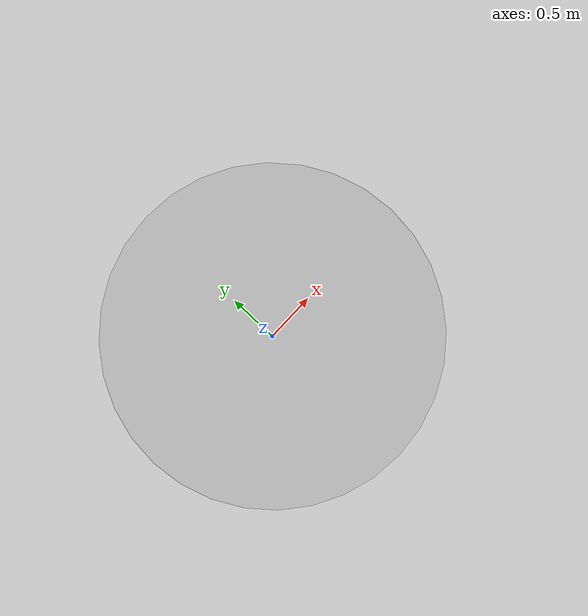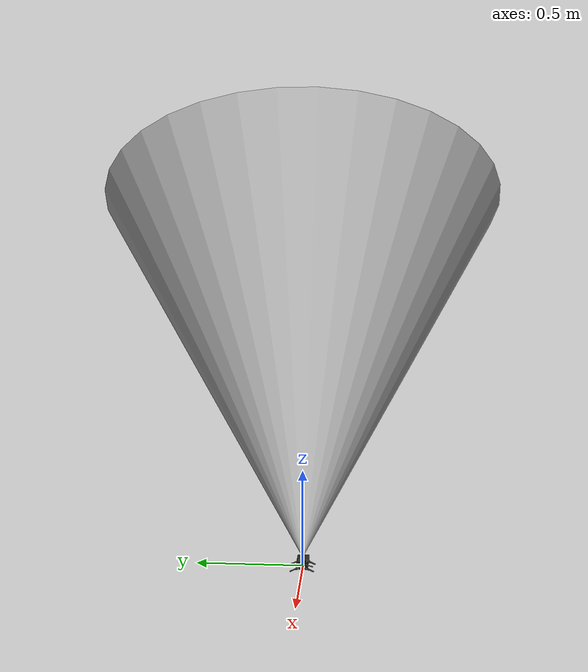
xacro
<?xml version="1.0"?>
<robot xmlns:xacro="http://www.ros.org/wiki/xacro" name="roadrunner">
<xacro:include filename="$(find kamagami)/urdf/kamagami.xacro"/>
<link name="cone_link">
	<visual>
		<origin xyz="0 0 0"/>
		<geometry>
			<mesh filename="$(find kamagami)/meshes/cone.dae"/>
		</geometry>
	</visual>
</link>
<gazebo reference="cone_link">
  <visual name="cone_vis">
  <transparency>0.8</transparency>
  <material>
  <ambient>1.0 0 0 0.1</ambient>
  <diffuse>1.0 0 0 0.1</diffuse>
  <specular>1.0 0 0 0.1</specular>
  <emissive>1.0 0 0 0.1</emissive>
  </material>
  </visual>
</gazebo>
<joint name="cone_joint" type="fixed">
	<origin xyz="0 0 0"/>
	<parent link="base_link"/>
	<child link="cone_link"/>
	<axis xyz="0 0 -1"/>
</joint>
</robot>

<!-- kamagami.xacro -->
<robot xmlns:xacro="http://www.ros.org/wiki/xacro" name="roadrunner">
<xacro:property name="wheel_radius" value="0.03" />
<xacro:property name="wheel_separation" value="0.12" />
<xacro:property name="show_wheels" value="false" />
<xacro:macro name="ball_wheel" params="origin name">
	<link name="${name}_link">
		<collision>
			<geometry>
				<sphere radius="0.005"/>
			</geometry>
		</collision>
			<inertial>
				<mass value="0.01"/>
				<inertia
					ixx="0.000001" ixy="0.0" ixz="0.0"
					iyy="0.000001" iyz="0.0"
					izz="0.000001" />
			</inertial>
		<xacro:if value="${show_wheels}">
			<visual>
				<geometry>
					<sphere radius="0.005"/>
				</geometry>
			</visual>
		</xacro:if>
	</link>
		<gazebo reference="${name}_link">
			<material>Gazebo/Orange</material>
			<mu1 value="0.1"/>
			<mu2 value="0.1"/>
		</gazebo>
		<joint name="${name}_joint" type="fixed">
			<origin xyz="${origin}"/>
			<parent link="body_link"/>
			<child link="${name}_link"/>
		</joint>
</xacro:macro>
	<xacro:macro name="wheel" params="xyz rpy name">
		<link name="${name}_link">
			<collision name="collision">
				<geometry>
					<cylinder radius="${wheel_radius}" length="0.01"/>
				</geometry>
			</collision>
			<inertial>
				<mass value="0.01"/>
				<inertia
					ixx="0.000001" ixy="0.0" ixz="0.0"
					iyy="0.000001" iyz="0.0"
					izz="0.000001" />
			</inertial>
		<xacro:if value="${show_wheels}">
			<visual>
				<geometry>
					<cylinder radius="${wheel_radius}" length="0.01"/>
				</geometry>
			</visual>
		</xacro:if>
		</link>
		<gazebo reference="${name}_link">
			<material>Gazebo/Orange</material>
			<mu1 value="0.8"/>
			<mu2 value="0.8"/>
		</gazebo>
		<joint name="${name}_joint" type="continuous">
			<origin xyz="${xyz}" rpy="${rpy}"/>
			<parent link="body_link"/>
			<child link="${name}_link"/>
			<axis xyz="0 0 -1"/>
		</joint>
	</xacro:macro>

	<link name="base_link">
			<inertial>
				<mass value="0.01"/>
				<inertia
					ixx="0.000001" ixy="0.0" ixz="0.0"
					iyy="0.000001" iyz="0.0"
					izz="0.000001" />
			</inertial>
	</link>
		<joint name="base_joint" type="fixed">
			<origin xyz="0 0 0.025"/>
			<parent link="base_link"/>
			<child link="body_link"/>
		</joint>
	<link name="body_link">
		<collision>
			<origin xyz="0 0 0"/>
			<geometry>
				<box size="0.12 0.07 0.05"/>
			</geometry>
		</collision>
		<visual>
			<origin xyz="0 -0.005 0.02" rpy="1.571 0 1.571"/>
				<geometry>
					<mesh filename="package://kamagami/meshes/kamagami.dae" scale="0.001 0.001 0.001"/>
				</geometry>
		</visual>
		<inertial>
			<origin xyz="0 0 0"/>
			<mass value="0.105"/>
			<inertia
				ixx="0.00006475" ixy="0.0" ixz="0.0"
				iyy="0.000168875" iyz="0.0"
				izz="0.00147875"/>
		</inertial>
	</link>
	<gazebo reference="body_link">
		<material>Gazebo/Black</material>
	</gazebo>
	<xacro:ball_wheel origin="-0.05 0 -0.025" name="ball"/>
	<xacro:wheel name="left_wheel" xyz="0.05 ${wheel_separation/2.0} 0"
		rpy="1.5708 0 0"/>
	<xacro:wheel name="right_wheel" xyz="0.05 -${wheel_separation/2.0} 0"
		rpy="1.5708 0 0"/>

	<link name="raspicam_link">
		<visual>
			<geometry>
				<box size="0.01 0.02 0.02"/>
			</geometry>
		</visual>
	</link>
	<joint name="raspicam_joint" type="fixed">
		<parent link="body_link"/>
		<child link="raspicam_link"/>
		<origin xyz="0.05 0 0.02" rpy="0 0 0"/>
	</joint>
	<gazebo reference="raspicam_link">
		<material>Gazebo/Grey</material>
		<sensor type="camera" name="camera">
			<update_rate>6.0</update_rate>
			<camera name="camera">
				<horizontal_fov>1.0123</horizontal_fov>
				<image>
					<width>2592</width>
					<height>1944</height>
					<format>B8G8R8</format>
				</image>
				<clip>
					<near>0.02</near>
					<far>300</far>
				</clip>
				<noise>
					<type>gaussian</type>
					<mean>0.0</mean>
					<stddev>0.007</stddev>
				</noise>
			</camera>
			<plugin name="camera_controller" filename="libgazebo_ros_camera.so">
				<alwaysOn>true</alwaysOn>
				<updateRate>0.0</updateRate>
				<cameraName>camera</cameraName>
				<imageTopicName>image</imageTopicName>
				<cameraInfoTopicName>camera_info</cameraInfoTopicName>
				<frameName>raspicam_link</frameName>
				<hackBaseline>0.1</hackBaseline>
				<distortionK1>.0</distortionK1>
				<distortionK2>0.0</distortionK2>
				<distortionK3>0.0</distortionK3>
				<distortionT1>0.0</distortionT1>
				<distortionT2>0.0</distortionT2>
			</plugin>
		</sensor>
	</gazebo>
	<gazebo>
	  <plugin name="differential_drive_controller" filename="libgazebo_ros_diff_drive.so">
	    <alwaysOn>true</alwaysOn>
	    <legacyMode>false</legacyMode>
	    <publishWheelTF>false</publishWheelTF>
	    <publishTf>true</publishTf>
	    <publishWheelJointState>false</publishWheelJointState>
	    <leftJoint>left_wheel_joint</leftJoint>
	    <rightJoint>right_wheel_joint</rightJoint>
	    <wheelAcceleration>0</wheelAcceleration>
	    <wheelTorque>5</wheelTorque>
	    <torque>1</torque>
	    <commandTopic>cmd_vel</commandTopic>
	    <odometryTopic>odom</odometryTopic>
	    <odometrySource>encoder</odometrySource>
	    <odometryFrame>odom</odometryFrame>
	    <rosDebugLevel>none</rosDebugLevel>
	    <robotBaseFrame>base_link</robotBaseFrame>
      <wheelSeparation>${wheel_separation}</wheelSeparation>
      <wheelDiameter>${wheel_radius*2.0}</wheelDiameter>
			<updateRate>100</updateRate>
	  </plugin>
	</gazebo>
  <joint name="laser_joint" type="fixed">
    <axis xyz="0 1 0" />
    <origin xyz="0 0 0.04" rpy="0 0 0"/>
    <parent link="body_link"/>
    <child link="laser_link"/>
  </joint>

  <!-- Hokuyo Laser -->
  <link name="laser_link">
    <collision>
      <origin xyz="0 0 0" rpy="0 0 0"/>
      <geometry>
    <box size="0.001 0.001 0.001"/>
      </geometry>
    </collision>
    <inertial>
      <mass value="1e-5" />
      <origin xyz="0 0 0" rpy="0 0 0"/>
      <inertia ixx="1e-6" ixy="0" ixz="0" iyy="1e-6" iyz="0" izz="1e-6" />
    </inertial>
  </link>
    <gazebo reference="laser_link">
        <sensor name="laser" type="ray">
        <pose>0 0 1 0 0 0</pose>
          <ray>
            <scan>
              <horizontal>
                <!-- The URG-04LX-UG01  has  683 steps with 0.35139 Degree resolution -->
                <resolution>1</resolution>
                <max_angle>2.0944</max_angle> <!-- 120 Degree -->
                <min_angle>-2.0944</min_angle> <!-- -120 Degree -->
                <samples>683</samples>
              </horizontal>
            </scan>
            <range>
              <min>0.08</min>
              <max>10</max>
              <resolution>0.01</resolution>
            </range>
          </ray>

          <plugin name="laser" filename="libgazebo_ros_laser.so" >
            <robotNamespace></robotNamespace>
            <topicName>scan</topicName>
            <frameName>laser_link</frameName>
          </plugin>

          <always_on>1</always_on>
          <update_rate>30</update_rate>
          <visualize>false</visualize>
        </sensor>
    </gazebo>
</robot>
